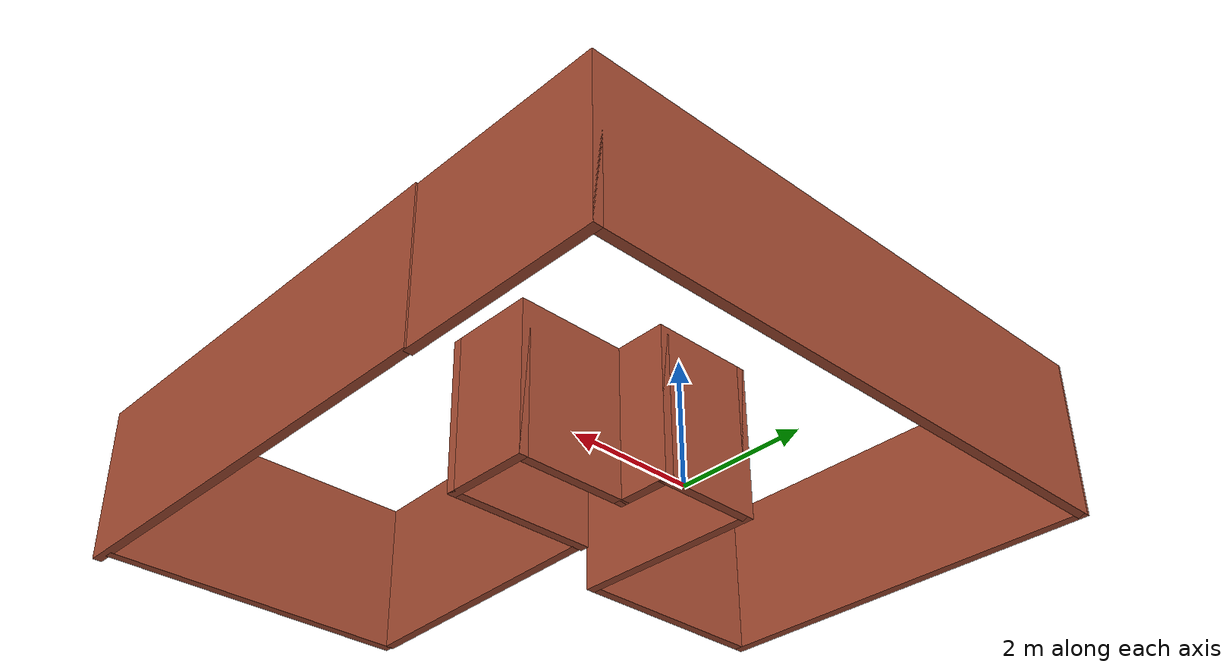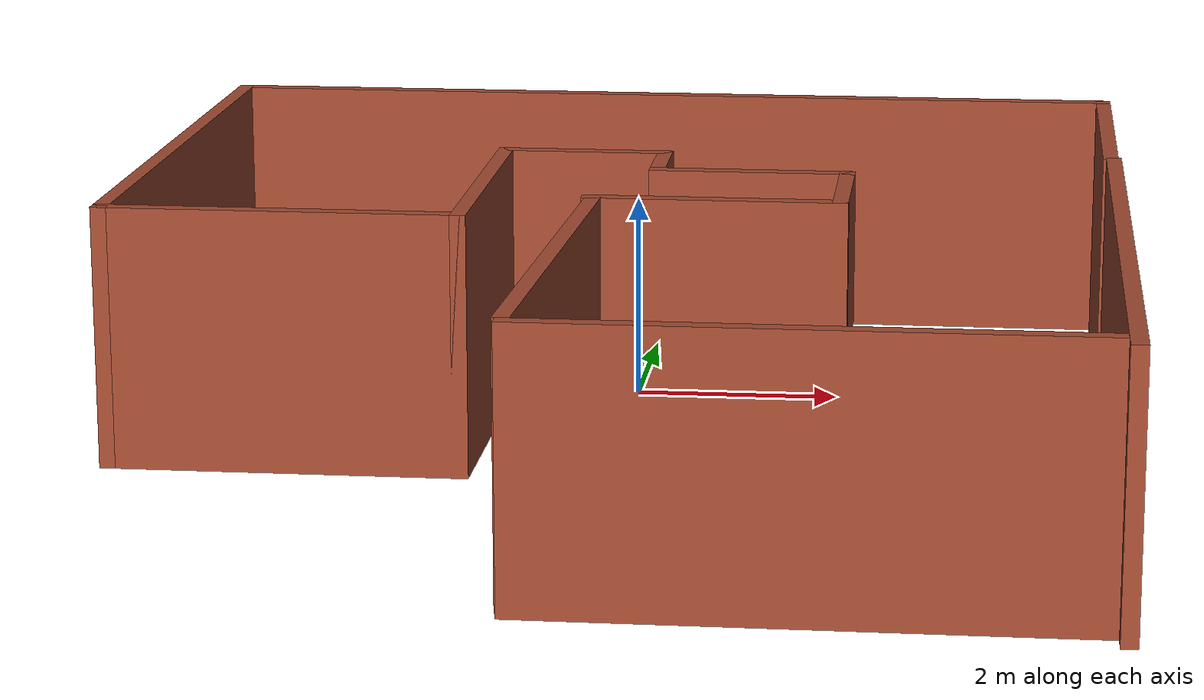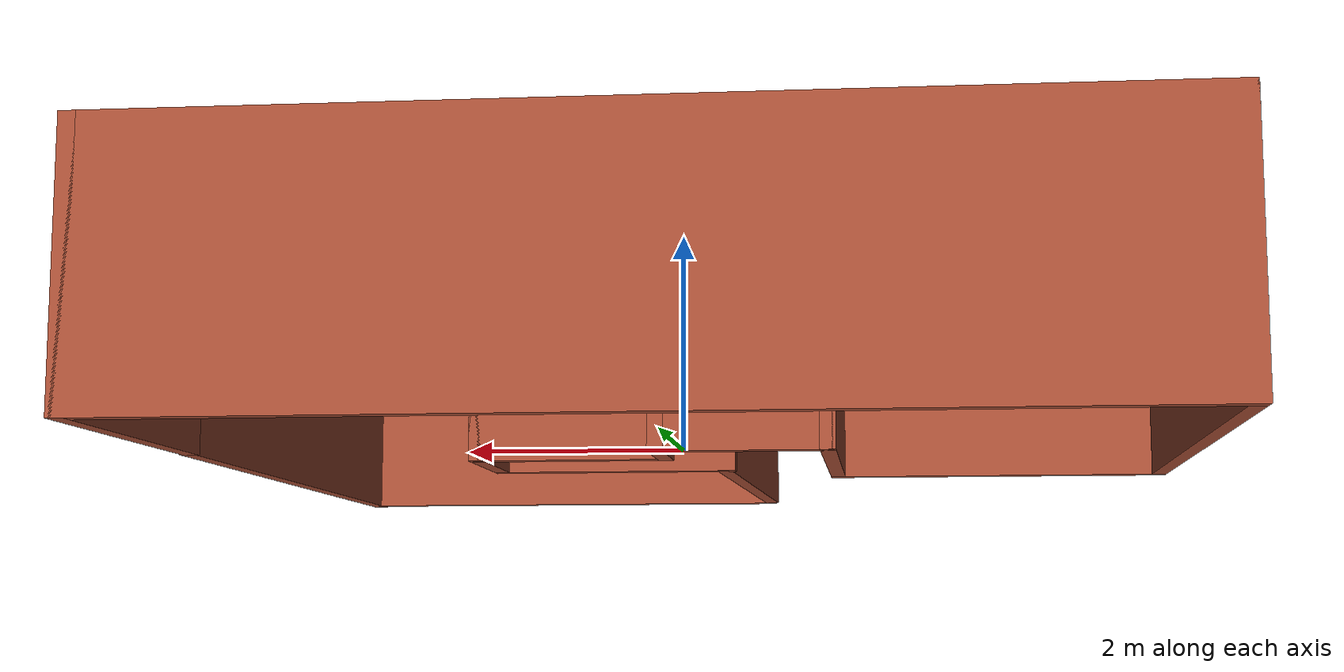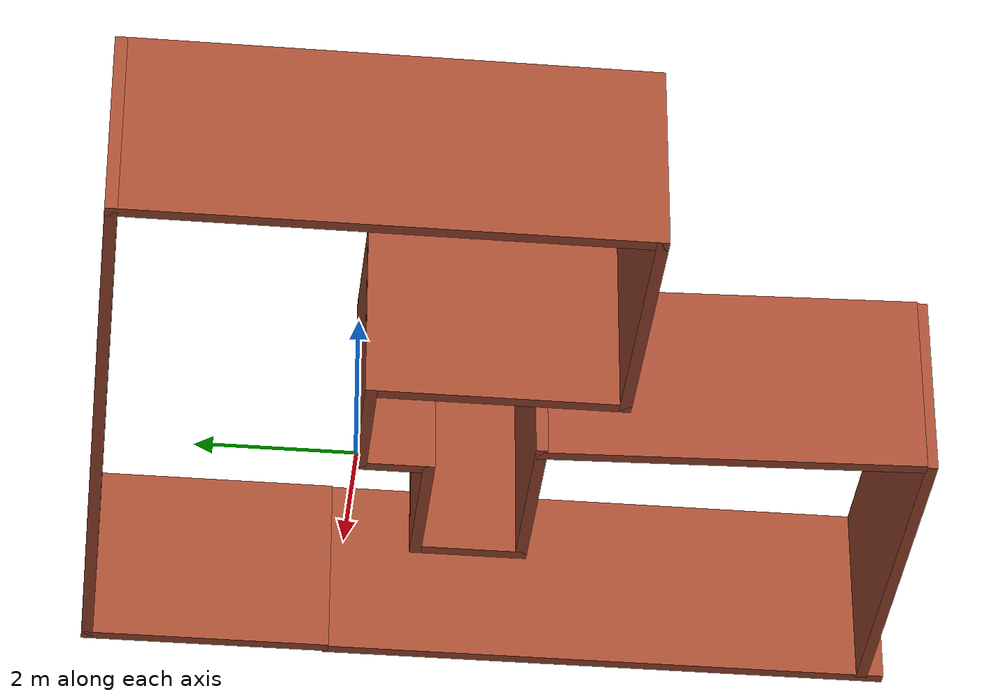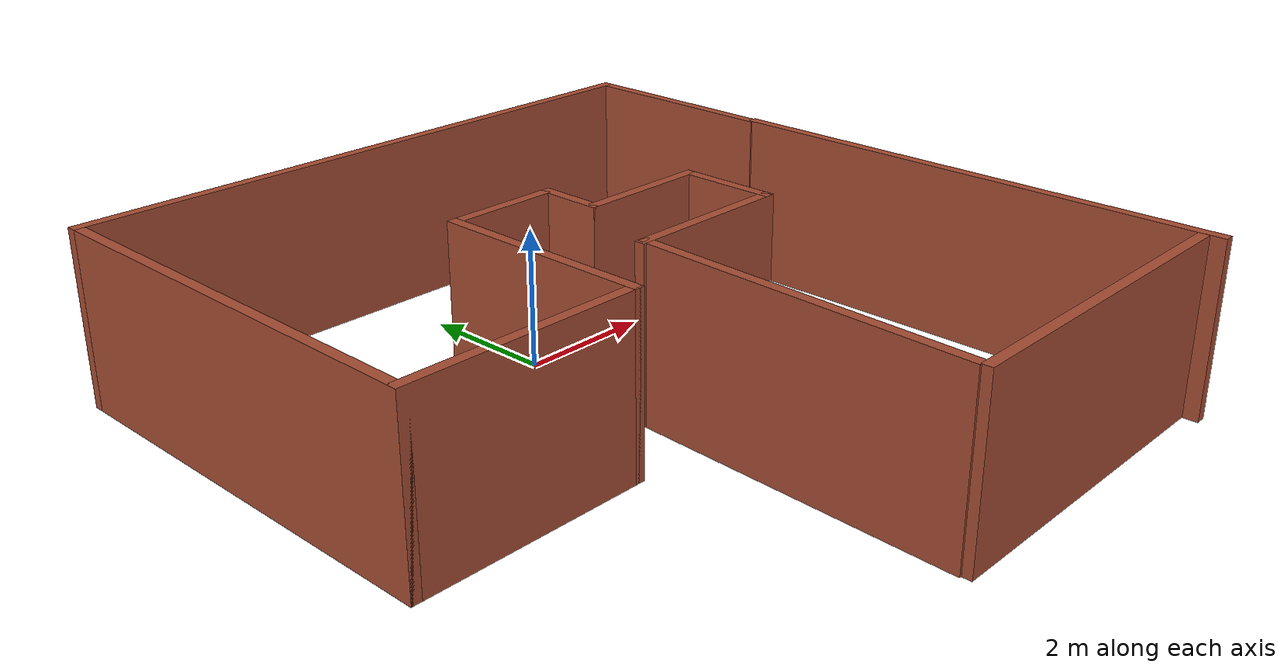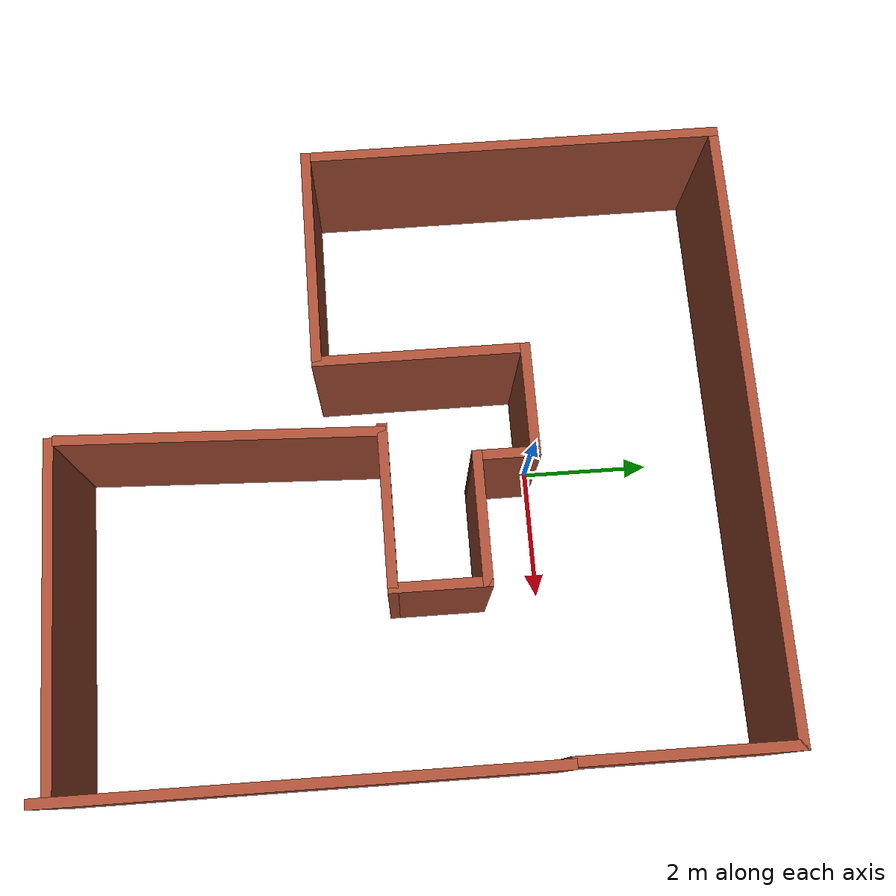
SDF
<?xml version='1.0'?>
<sdf version='1.6'>
  <model name='world'>
    <link name='Wall_0'>
      <pose frame=''>-4.675 0 0 0 0 -1.5708</pose>
      <self_collide>0</self_collide>
      <enable_wind>0</enable_wind>
      <kinematic>0</kinematic>
      <visual name='Wall_0_Visual'>
        <pose frame=''>0 0 1.25 0 -0 0</pose>
        <geometry>
          <box>
            <size>6.5 0.15 2.5</size>
          </box>
        </geometry>
        <material>
          <script>
            <uri>file://media/materials/scripts/gazebo.material</uri>
            <name>Gazebo/Bricks</name>
          </script>
          <ambient>1 1 1 1</ambient>
        </material>
        <meta>
          <layer>0</layer>
        </meta>
        <transparency>0</transparency>
        <cast_shadows>1</cast_shadows>
      </visual>
      <collision name='Wall_0_Collision'>
        <laser_retro>0</laser_retro>
        <max_contacts>10</max_contacts>
        <pose frame=''>0 0 1.25 0 -0 0</pose>
        <geometry>
          <box>
            <size>6.5 0.15 2.5</size>
          </box>
        </geometry>
        <surface>
          <friction>
            <ode>
              <mu>1</mu>
              <mu2>1</mu2>
              <fdir1>0 0 0</fdir1>
              <slip1>0</slip1>
              <slip2>0</slip2>
            </ode>
            <torsional>
              <coefficient>1</coefficient>
              <patch_radius>0</patch_radius>
              <surface_radius>0</surface_radius>
              <use_patch_radius>1</use_patch_radius>
              <ode>
                <slip>0</slip>
              </ode>
            </torsional>
          </friction>
          <bounce>
            <restitution_coefficient>0</restitution_coefficient>
            <threshold>1e+06</threshold>
          </bounce>
          <contact>
            <collide_without_contact>0</collide_without_contact>
            <collide_without_contact_bitmask>1</collide_without_contact_bitmask>
            <collide_bitmask>1</collide_bitmask>
            <ode>
              <soft_cfm>0</soft_cfm>
              <soft_erp>0.2</soft_erp>
              <kp>1e+13</kp>
              <kd>1</kd>
              <max_vel>0.01</max_vel>
              <min_depth>0</min_depth>
            </ode>
            <bullet>
              <split_impulse>1</split_impulse>
              <split_impulse_penetration_threshold>-0.01</split_impulse_penetration_threshold>
              <soft_cfm>0</soft_cfm>
              <soft_erp>0.2</soft_erp>
              <kp>1e+13</kp>
              <kd>1</kd>
            </bullet>
          </contact>
        </surface>
      </collision>
    </link>
    <link name='Wall_1'>
      <pose frame=''>-3 -3.175 0 0 -0 0</pose>
      <self_collide>0</self_collide>
      <enable_wind>0</enable_wind>
      <kinematic>0</kinematic>
      <visual name='Wall_1_Visual'>
        <pose frame=''>0 0 1.25 0 -0 0</pose>
        <geometry>
          <box>
            <size>3.5 0.15 2.5</size>
          </box>
        </geometry>
        <material>
          <script>
            <uri>file://media/materials/scripts/gazebo.material</uri>
            <name>Gazebo/Bricks</name>
          </script>
          <ambient>1 1 1 1</ambient>
        </material>
        <meta>
          <layer>0</layer>
        </meta>
        <transparency>0</transparency>
        <cast_shadows>1</cast_shadows>
      </visual>
      <collision name='Wall_1_Collision'>
        <laser_retro>0</laser_retro>
        <max_contacts>10</max_contacts>
        <pose frame=''>0 0 1.25 0 -0 0</pose>
        <geometry>
          <box>
            <size>3.5 0.15 2.5</size>
          </box>
        </geometry>
        <surface>
          <friction>
            <ode>
              <mu>1</mu>
              <mu2>1</mu2>
              <fdir1>0 0 0</fdir1>
              <slip1>0</slip1>
              <slip2>0</slip2>
            </ode>
            <torsional>
              <coefficient>1</coefficient>
              <patch_radius>0</patch_radius>
              <surface_radius>0</surface_radius>
              <use_patch_radius>1</use_patch_radius>
              <ode>
                <slip>0</slip>
              </ode>
            </torsional>
          </friction>
          <bounce>
            <restitution_coefficient>0</restitution_coefficient>
            <threshold>1e+06</threshold>
          </bounce>
          <contact>
            <collide_without_contact>0</collide_without_contact>
            <collide_without_contact_bitmask>1</collide_without_contact_bitmask>
            <collide_bitmask>1</collide_bitmask>
            <ode>
              <soft_cfm>0</soft_cfm>
              <soft_erp>0.2</soft_erp>
              <kp>1e+13</kp>
              <kd>1</kd>
              <max_vel>0.01</max_vel>
              <min_depth>0</min_depth>
            </ode>
            <bullet>
              <split_impulse>1</split_impulse>
              <split_impulse_penetration_threshold>-0.01</split_impulse_penetration_threshold>
              <soft_cfm>0</soft_cfm>
              <soft_erp>0.2</soft_erp>
              <kp>1e+13</kp>
              <kd>1</kd>
            </bullet>
          </contact>
        </surface>
      </collision>
    </link>
    <link name='Wall_11'>
      <pose frame=''>0 3.175 0 0 -0 0</pose>
      <self_collide>0</self_collide>
      <enable_wind>0</enable_wind>
      <kinematic>0</kinematic>
      <visual name='Wall_11_Visual'>
        <pose frame=''>0 0 1.25 0 -0 0</pose>
        <geometry>
          <box>
            <size>9.5 0.15 2.5</size>
          </box>
        </geometry>
        <material>
          <script>
            <uri>file://media/materials/scripts/gazebo.material</uri>
            <name>Gazebo/Bricks</name>
          </script>
          <ambient>1 1 1 1</ambient>
        </material>
        <meta>
          <layer>0</layer>
        </meta>
        <transparency>0</transparency>
        <cast_shadows>1</cast_shadows>
      </visual>
      <collision name='Wall_11_Collision'>
        <laser_retro>0</laser_retro>
        <max_contacts>10</max_contacts>
        <pose frame=''>0 0 1.25 0 -0 0</pose>
        <geometry>
          <box>
            <size>9.5 0.15 2.5</size>
          </box>
        </geometry>
        <surface>
          <friction>
            <ode>
              <mu>1</mu>
              <mu2>1</mu2>
              <fdir1>0 0 0</fdir1>
              <slip1>0</slip1>
              <slip2>0</slip2>
            </ode>
            <torsional>
              <coefficient>1</coefficient>
              <patch_radius>0</patch_radius>
              <surface_radius>0</surface_radius>
              <use_patch_radius>1</use_patch_radius>
              <ode>
                <slip>0</slip>
              </ode>
            </torsional>
          </friction>
          <bounce>
            <restitution_coefficient>0</restitution_coefficient>
            <threshold>1e+06</threshold>
          </bounce>
          <contact>
            <collide_without_contact>0</collide_without_contact>
            <collide_without_contact_bitmask>1</collide_without_contact_bitmask>
            <collide_bitmask>1</collide_bitmask>
            <ode>
              <soft_cfm>0</soft_cfm>
              <soft_erp>0.2</soft_erp>
              <kp>1e+13</kp>
              <kd>1</kd>
              <max_vel>0.01</max_vel>
              <min_depth>0</min_depth>
            </ode>
            <bullet>
              <split_impulse>1</split_impulse>
              <split_impulse_penetration_threshold>-0.01</split_impulse_penetration_threshold>
              <soft_cfm>0</soft_cfm>
              <soft_erp>0.2</soft_erp>
              <kp>1e+13</kp>
              <kd>1</kd>
            </bullet>
          </contact>
        </surface>
      </collision>
    </link>
    <link name='Wall_12'>
      <pose frame=''>4.675 1.625 0 0 0 -1.5708</pose>
      <self_collide>0</self_collide>
      <enable_wind>0</enable_wind>
      <kinematic>0</kinematic>
      <visual name='Wall_12_Visual'>
        <pose frame=''>0 0 1.25 0 -0 0</pose>
        <geometry>
          <box>
            <size>3.25 0.15 2.5</size>
          </box>
        </geometry>
        <material>
          <script>
            <uri>file://media/materials/scripts/gazebo.material</uri>
            <name>Gazebo/Bricks</name>
          </script>
          <ambient>1 1 1 1</ambient>
        </material>
        <meta>
          <layer>0</layer>
        </meta>
        <transparency>0</transparency>
        <cast_shadows>1</cast_shadows>
      </visual>
      <collision name='Wall_12_Collision'>
        <laser_retro>0</laser_retro>
        <max_contacts>10</max_contacts>
        <pose frame=''>0 0 1.25 0 -0 0</pose>
        <geometry>
          <box>
            <size>3.25 0.15 2.5</size>
          </box>
        </geometry>
        <surface>
          <friction>
            <ode>
              <mu>1</mu>
              <mu2>1</mu2>
              <fdir1>0 0 0</fdir1>
              <slip1>0</slip1>
              <slip2>0</slip2>
            </ode>
            <torsional>
              <coefficient>1</coefficient>
              <patch_radius>0</patch_radius>
              <surface_radius>0</surface_radius>
              <use_patch_radius>1</use_patch_radius>
              <ode>
                <slip>0</slip>
              </ode>
            </torsional>
          </friction>
          <bounce>
            <restitution_coefficient>0</restitution_coefficient>
            <threshold>1e+06</threshold>
          </bounce>
          <contact>
            <collide_without_contact>0</collide_without_contact>
            <collide_without_contact_bitmask>1</collide_without_contact_bitmask>
            <collide_bitmask>1</collide_bitmask>
            <ode>
              <soft_cfm>0</soft_cfm>
              <soft_erp>0.2</soft_erp>
              <kp>1e+13</kp>
              <kd>1</kd>
              <max_vel>0.01</max_vel>
              <min_depth>0</min_depth>
            </ode>
            <bullet>
              <split_impulse>1</split_impulse>
              <split_impulse_penetration_threshold>-0.01</split_impulse_penetration_threshold>
              <soft_cfm>0</soft_cfm>
              <soft_erp>0.2</soft_erp>
              <kp>1e+13</kp>
              <kd>1</kd>
            </bullet>
          </contact>
        </surface>
      </collision>
    </link>
    <link name='Wall_14'>
      <pose frame=''>4.70399 -3.67483 0.002247 0 0 -1.5708</pose>
      <self_collide>0</self_collide>
      <enable_wind>0</enable_wind>
      <kinematic>0</kinematic>
      <inertial>
        <inertia>
          <ixx>0</ixx>
          <ixy>0</ixy>
          <ixz>0</ixz>
          <iyy>0</iyy>
          <iyz>0</iyz>
          <izz>0</izz>
        </inertia>
        <mass>0</mass>
        <pose frame=''>0 0 0 0 -0 0</pose>
      </inertial>
      <visual name='Wall_14_Visual'>
        <pose frame=''>0 0 1.25 0 -0 0</pose>
        <geometry>
          <box>
            <size>7.48301 0.15 2.5</size>
          </box>
        </geometry>
        <material>
          <script>
            <uri>file://media/materials/scripts/gazebo.material</uri>
            <name>Gazebo/Bricks</name>
          </script>
          <ambient>1 1 1 1</ambient>
        </material>
        <meta>
          <layer>0</layer>
        </meta>
        <transparency>0</transparency>
        <cast_shadows>1</cast_shadows>
      </visual>
      <collision name='Wall_14_Collision'>
        <laser_retro>0</laser_retro>
        <max_contacts>10</max_contacts>
        <pose frame=''>0 0 1.25 0 -0 0</pose>
        <geometry>
          <box>
            <size>7.48301 0.15 2.5</size>
          </box>
        </geometry>
        <surface>
          <friction>
            <ode>
              <mu>1</mu>
              <mu2>1</mu2>
              <fdir1>0 0 0</fdir1>
              <slip1>0</slip1>
              <slip2>0</slip2>
            </ode>
            <torsional>
              <coefficient>1</coefficient>
              <patch_radius>0</patch_radius>
              <surface_radius>0</surface_radius>
              <use_patch_radius>1</use_patch_radius>
              <ode>
                <slip>0</slip>
              </ode>
            </torsional>
          </friction>
          <bounce>
            <restitution_coefficient>0</restitution_coefficient>
            <threshold>1e+06</threshold>
          </bounce>
          <contact>
            <collide_without_contact>0</collide_without_contact>
            <collide_without_contact_bitmask>1</collide_without_contact_bitmask>
            <collide_bitmask>1</collide_bitmask>
            <ode>
              <soft_cfm>0</soft_cfm>
              <soft_erp>0.2</soft_erp>
              <kp>1e+13</kp>
              <kd>1</kd>
              <max_vel>0.01</max_vel>
              <min_depth>0</min_depth>
            </ode>
            <bullet>
              <split_impulse>1</split_impulse>
              <split_impulse_penetration_threshold>-0.01</split_impulse_penetration_threshold>
              <soft_cfm>0</soft_cfm>
              <soft_erp>0.2</soft_erp>
              <kp>1e+13</kp>
              <kd>1</kd>
            </bullet>
          </contact>
        </surface>
      </collision>
    </link>
    <link name='Wall_16'>
      <pose frame=''>2.12875 -7.12658 0 0 -0 3.14159</pose>
      <self_collide>0</self_collide>
      <enable_wind>0</enable_wind>
      <kinematic>0</kinematic>
      <inertial>
        <inertia>
          <ixx>0</ixx>
          <ixy>0</ixy>
          <ixz>0</ixz>
          <iyy>0</iyy>
          <iyz>0</iyz>
          <izz>0</izz>
        </inertia>
        <mass>0</mass>
        <pose frame=''>0 0 0 0 -0 0</pose>
      </inertial>
      <visual name='Wall_16_Visual'>
        <pose frame=''>0 0 1.25 0 -0 0</pose>
        <geometry>
          <box>
            <size>5.10401 0.15 2.5</size>
          </box>
        </geometry>
        <material>
          <script>
            <uri>file://media/materials/scripts/gazebo.material</uri>
            <name>Gazebo/Bricks</name>
          </script>
          <ambient>1 1 1 1</ambient>
        </material>
        <meta>
          <layer>0</layer>
        </meta>
        <transparency>0</transparency>
        <cast_shadows>1</cast_shadows>
      </visual>
      <collision name='Wall_16_Collision'>
        <laser_retro>0</laser_retro>
        <max_contacts>10</max_contacts>
        <pose frame=''>0 0 1.25 0 -0 0</pose>
        <geometry>
          <box>
            <size>5.10401 0.15 2.5</size>
          </box>
        </geometry>
        <surface>
          <friction>
            <ode>
              <mu>1</mu>
              <mu2>1</mu2>
              <fdir1>0 0 0</fdir1>
              <slip1>0</slip1>
              <slip2>0</slip2>
            </ode>
            <torsional>
              <coefficient>1</coefficient>
              <patch_radius>0</patch_radius>
              <surface_radius>0</surface_radius>
              <use_patch_radius>1</use_patch_radius>
              <ode>
                <slip>0</slip>
              </ode>
            </torsional>
          </friction>
          <bounce>
            <restitution_coefficient>0</restitution_coefficient>
            <threshold>1e+06</threshold>
          </bounce>
          <contact>
            <collide_without_contact>0</collide_without_contact>
            <collide_without_contact_bitmask>1</collide_without_contact_bitmask>
            <collide_bitmask>1</collide_bitmask>
            <ode>
              <soft_cfm>0</soft_cfm>
              <soft_erp>0.2</soft_erp>
              <kp>1e+13</kp>
              <kd>1</kd>
              <max_vel>0.01</max_vel>
              <min_depth>0</min_depth>
            </ode>
            <bullet>
              <split_impulse>1</split_impulse>
              <split_impulse_penetration_threshold>-0.01</split_impulse_penetration_threshold>
              <soft_cfm>0</soft_cfm>
              <soft_erp>0.2</soft_erp>
              <kp>1e+13</kp>
              <kd>1</kd>
            </bullet>
          </contact>
        </surface>
      </collision>
    </link>
    <link name='Wall_18'>
      <pose frame=''>-0.281577 -4.64365 0 0 -0 1.53082</pose>
      <self_collide>0</self_collide>
      <enable_wind>0</enable_wind>
      <kinematic>0</kinematic>
      <inertial>
        <inertia>
          <ixx>0</ixx>
          <ixy>0</ixy>
          <ixz>0</ixz>
          <iyy>0</iyy>
          <iyz>0</iyz>
          <izz>0</izz>
        </inertia>
        <mass>0</mass>
        <pose frame=''>0 0 0 0 -0 0</pose>
      </inertial>
      <visual name='Wall_18_Visual'>
        <pose frame=''>0 0 1.25 0 -0 0</pose>
        <geometry>
          <box>
            <size>4.85133 0.15 2.5</size>
          </box>
        </geometry>
        <material>
          <script>
            <uri>file://media/materials/scripts/gazebo.material</uri>
            <name>Gazebo/Bricks</name>
          </script>
          <ambient>1 1 1 1</ambient>
        </material>
        <meta>
          <layer>0</layer>
        </meta>
        <transparency>0</transparency>
        <cast_shadows>1</cast_shadows>
      </visual>
      <collision name='Wall_18_Collision'>
        <laser_retro>0</laser_retro>
        <max_contacts>10</max_contacts>
        <pose frame=''>0 0 1.25 0 -0 0</pose>
        <geometry>
          <box>
            <size>4.85133 0.15 2.5</size>
          </box>
        </geometry>
        <surface>
          <friction>
            <ode>
              <mu>1</mu>
              <mu2>1</mu2>
              <fdir1>0 0 0</fdir1>
              <slip1>0</slip1>
              <slip2>0</slip2>
            </ode>
            <torsional>
              <coefficient>1</coefficient>
              <patch_radius>0</patch_radius>
              <surface_radius>0</surface_radius>
              <use_patch_radius>1</use_patch_radius>
              <ode>
                <slip>0</slip>
              </ode>
            </torsional>
          </friction>
          <bounce>
            <restitution_coefficient>0</restitution_coefficient>
            <threshold>1e+06</threshold>
          </bounce>
          <contact>
            <collide_without_contact>0</collide_without_contact>
            <collide_without_contact_bitmask>1</collide_without_contact_bitmask>
            <collide_bitmask>1</collide_bitmask>
            <ode>
              <soft_cfm>0</soft_cfm>
              <soft_erp>0.2</soft_erp>
              <kp>1e+13</kp>
              <kd>1</kd>
              <max_vel>0.01</max_vel>
              <min_depth>0</min_depth>
            </ode>
            <bullet>
              <split_impulse>1</split_impulse>
              <split_impulse_penetration_threshold>-0.01</split_impulse_penetration_threshold>
              <soft_cfm>0</soft_cfm>
              <soft_erp>0.2</soft_erp>
              <kp>1e+13</kp>
              <kd>1</kd>
            </bullet>
          </contact>
        </surface>
      </collision>
    </link>
    <link name='Wall_2'>
      <pose frame=''>-1.325 -1.625 0 0 -0 1.5708</pose>
      <self_collide>0</self_collide>
      <enable_wind>0</enable_wind>
      <kinematic>0</kinematic>
      <visual name='Wall_2_Visual'>
        <pose frame=''>0 0 1.25 0 -0 0</pose>
        <geometry>
          <box>
            <size>3.25 0.15 2.5</size>
          </box>
        </geometry>
        <material>
          <script>
            <uri>file://media/materials/scripts/gazebo.material</uri>
            <name>Gazebo/Bricks</name>
          </script>
          <ambient>1 1 1 1</ambient>
        </material>
        <meta>
          <layer>0</layer>
        </meta>
        <transparency>0</transparency>
        <cast_shadows>1</cast_shadows>
      </visual>
      <collision name='Wall_2_Collision'>
        <laser_retro>0</laser_retro>
        <max_contacts>10</max_contacts>
        <pose frame=''>0 0 1.25 0 -0 0</pose>
        <geometry>
          <box>
            <size>3.25 0.15 2.5</size>
          </box>
        </geometry>
        <surface>
          <friction>
            <ode>
              <mu>1</mu>
              <mu2>1</mu2>
              <fdir1>0 0 0</fdir1>
              <slip1>0</slip1>
              <slip2>0</slip2>
            </ode>
            <torsional>
              <coefficient>1</coefficient>
              <patch_radius>0</patch_radius>
              <surface_radius>0</surface_radius>
              <use_patch_radius>1</use_patch_radius>
              <ode>
                <slip>0</slip>
              </ode>
            </torsional>
          </friction>
          <bounce>
            <restitution_coefficient>0</restitution_coefficient>
            <threshold>1e+06</threshold>
          </bounce>
          <contact>
            <collide_without_contact>0</collide_without_contact>
            <collide_without_contact_bitmask>1</collide_without_contact_bitmask>
            <collide_bitmask>1</collide_bitmask>
            <ode>
              <soft_cfm>0</soft_cfm>
              <soft_erp>0.2</soft_erp>
              <kp>1e+13</kp>
              <kd>1</kd>
              <max_vel>0.01</max_vel>
              <min_depth>0</min_depth>
            </ode>
            <bullet>
              <split_impulse>1</split_impulse>
              <split_impulse_penetration_threshold>-0.01</split_impulse_penetration_threshold>
              <soft_cfm>0</soft_cfm>
              <soft_erp>0.2</soft_erp>
              <kp>1e+13</kp>
              <kd>1</kd>
            </bullet>
          </contact>
        </surface>
      </collision>
    </link>
    <link name='Wall_3'>
      <pose frame=''>-0.525 -0.075 0 0 -0 0</pose>
      <self_collide>0</self_collide>
      <enable_wind>0</enable_wind>
      <kinematic>0</kinematic>
      <visual name='Wall_3_Visual'>
        <pose frame=''>0 0 1.25 0 -0 0</pose>
        <geometry>
          <box>
            <size>1.75 0.15 2.5</size>
          </box>
        </geometry>
        <material>
          <script>
            <uri>file://media/materials/scripts/gazebo.material</uri>
            <name>Gazebo/Bricks</name>
          </script>
          <ambient>1 1 1 1</ambient>
        </material>
        <meta>
          <layer>0</layer>
        </meta>
        <transparency>0</transparency>
        <cast_shadows>1</cast_shadows>
      </visual>
      <collision name='Wall_3_Collision'>
        <laser_retro>0</laser_retro>
        <max_contacts>10</max_contacts>
        <pose frame=''>0 0 1.25 0 -0 0</pose>
        <geometry>
          <box>
            <size>1.75 0.15 2.5</size>
          </box>
        </geometry>
        <surface>
          <friction>
            <ode>
              <mu>1</mu>
              <mu2>1</mu2>
              <fdir1>0 0 0</fdir1>
              <slip1>0</slip1>
              <slip2>0</slip2>
            </ode>
            <torsional>
              <coefficient>1</coefficient>
              <patch_radius>0</patch_radius>
              <surface_radius>0</surface_radius>
              <use_patch_radius>1</use_patch_radius>
              <ode>
                <slip>0</slip>
              </ode>
            </torsional>
          </friction>
          <bounce>
            <restitution_coefficient>0</restitution_coefficient>
            <threshold>1e+06</threshold>
          </bounce>
          <contact>
            <collide_without_contact>0</collide_without_contact>
            <collide_without_contact_bitmask>1</collide_without_contact_bitmask>
            <collide_bitmask>1</collide_bitmask>
            <ode>
              <soft_cfm>0</soft_cfm>
              <soft_erp>0.2</soft_erp>
              <kp>1e+13</kp>
              <kd>1</kd>
              <max_vel>0.01</max_vel>
              <min_depth>0</min_depth>
            </ode>
            <bullet>
              <split_impulse>1</split_impulse>
              <split_impulse_penetration_threshold>-0.01</split_impulse_penetration_threshold>
              <soft_cfm>0</soft_cfm>
              <soft_erp>0.2</soft_erp>
              <kp>1e+13</kp>
              <kd>1</kd>
            </bullet>
          </contact>
        </surface>
      </collision>
    </link>
    <link name='Wall_4'>
      <pose frame=''>0.275 -0.5 0 0 0 -1.5708</pose>
      <self_collide>0</self_collide>
      <enable_wind>0</enable_wind>
      <kinematic>0</kinematic>
      <visual name='Wall_4_Visual'>
        <pose frame=''>0 0 1.25 0 -0 0</pose>
        <geometry>
          <box>
            <size>1 0.15 2.5</size>
          </box>
        </geometry>
        <material>
          <script>
            <uri>file://media/materials/scripts/gazebo.material</uri>
            <name>Gazebo/Bricks</name>
          </script>
          <ambient>1 1 1 1</ambient>
        </material>
        <meta>
          <layer>0</layer>
        </meta>
        <transparency>0</transparency>
        <cast_shadows>1</cast_shadows>
      </visual>
      <collision name='Wall_4_Collision'>
        <laser_retro>0</laser_retro>
        <max_contacts>10</max_contacts>
        <pose frame=''>0 0 1.25 0 -0 0</pose>
        <geometry>
          <box>
            <size>1 0.15 2.5</size>
          </box>
        </geometry>
        <surface>
          <friction>
            <ode>
              <mu>1</mu>
              <mu2>1</mu2>
              <fdir1>0 0 0</fdir1>
              <slip1>0</slip1>
              <slip2>0</slip2>
            </ode>
            <torsional>
              <coefficient>1</coefficient>
              <patch_radius>0</patch_radius>
              <surface_radius>0</surface_radius>
              <use_patch_radius>1</use_patch_radius>
              <ode>
                <slip>0</slip>
              </ode>
            </torsional>
          </friction>
          <bounce>
            <restitution_coefficient>0</restitution_coefficient>
            <threshold>1e+06</threshold>
          </bounce>
          <contact>
            <collide_without_contact>0</collide_without_contact>
            <collide_without_contact_bitmask>1</collide_without_contact_bitmask>
            <collide_bitmask>1</collide_bitmask>
            <ode>
              <soft_cfm>0</soft_cfm>
              <soft_erp>0.2</soft_erp>
              <kp>1e+13</kp>
              <kd>1</kd>
              <max_vel>0.01</max_vel>
              <min_depth>0</min_depth>
            </ode>
            <bullet>
              <split_impulse>1</split_impulse>
              <split_impulse_penetration_threshold>-0.01</split_impulse_penetration_threshold>
              <soft_cfm>0</soft_cfm>
              <soft_erp>0.2</soft_erp>
              <kp>1e+13</kp>
              <kd>1</kd>
            </bullet>
          </contact>
        </surface>
      </collision>
    </link>
    <link name='Wall_5'>
      <pose frame=''>1.2 -0.925 0 0 -0 0</pose>
      <self_collide>0</self_collide>
      <enable_wind>0</enable_wind>
      <kinematic>0</kinematic>
      <visual name='Wall_5_Visual'>
        <pose frame=''>0 0 1.25 0 -0 0</pose>
        <geometry>
          <box>
            <size>2 0.15 2.5</size>
          </box>
        </geometry>
        <material>
          <script>
            <uri>file://media/materials/scripts/gazebo.material</uri>
            <name>Gazebo/Bricks</name>
          </script>
          <ambient>1 1 1 1</ambient>
        </material>
        <meta>
          <layer>0</layer>
        </meta>
        <transparency>0</transparency>
        <cast_shadows>1</cast_shadows>
      </visual>
      <collision name='Wall_5_Collision'>
        <laser_retro>0</laser_retro>
        <max_contacts>10</max_contacts>
        <pose frame=''>0 0 1.25 0 -0 0</pose>
        <geometry>
          <box>
            <size>2 0.15 2.5</size>
          </box>
        </geometry>
        <surface>
          <friction>
            <ode>
              <mu>1</mu>
              <mu2>1</mu2>
              <fdir1>0 0 0</fdir1>
              <slip1>0</slip1>
              <slip2>0</slip2>
            </ode>
            <torsional>
              <coefficient>1</coefficient>
              <patch_radius>0</patch_radius>
              <surface_radius>0</surface_radius>
              <use_patch_radius>1</use_patch_radius>
              <ode>
                <slip>0</slip>
              </ode>
            </torsional>
          </friction>
          <bounce>
            <restitution_coefficient>0</restitution_coefficient>
            <threshold>1e+06</threshold>
          </bounce>
          <contact>
            <collide_without_contact>0</collide_without_contact>
            <collide_without_contact_bitmask>1</collide_without_contact_bitmask>
            <collide_bitmask>1</collide_bitmask>
            <ode>
              <soft_cfm>0</soft_cfm>
              <soft_erp>0.2</soft_erp>
              <kp>1e+13</kp>
              <kd>1</kd>
              <max_vel>0.01</max_vel>
              <min_depth>0</min_depth>
            </ode>
            <bullet>
              <split_impulse>1</split_impulse>
              <split_impulse_penetration_threshold>-0.01</split_impulse_penetration_threshold>
              <soft_cfm>0</soft_cfm>
              <soft_erp>0.2</soft_erp>
              <kp>1e+13</kp>
              <kd>1</kd>
            </bullet>
          </contact>
        </surface>
      </collision>
    </link>
    <link name='Wall_6'>
      <pose frame=''>2.125 -1.6 0 0 0 -1.5708</pose>
      <self_collide>0</self_collide>
      <enable_wind>0</enable_wind>
      <kinematic>0</kinematic>
      <visual name='Wall_6_Visual'>
        <pose frame=''>0 0 1.25 0 -0 0</pose>
        <geometry>
          <box>
            <size>1.5 0.15 2.5</size>
          </box>
        </geometry>
        <material>
          <script>
            <uri>file://media/materials/scripts/gazebo.material</uri>
            <name>Gazebo/Bricks</name>
          </script>
          <ambient>1 1 1 1</ambient>
        </material>
        <meta>
          <layer>0</layer>
        </meta>
        <transparency>0</transparency>
        <cast_shadows>1</cast_shadows>
      </visual>
      <collision name='Wall_6_Collision'>
        <laser_retro>0</laser_retro>
        <max_contacts>10</max_contacts>
        <pose frame=''>0 0 1.25 0 -0 0</pose>
        <geometry>
          <box>
            <size>1.5 0.15 2.5</size>
          </box>
        </geometry>
        <surface>
          <friction>
            <ode>
              <mu>1</mu>
              <mu2>1</mu2>
              <fdir1>0 0 0</fdir1>
              <slip1>0</slip1>
              <slip2>0</slip2>
            </ode>
            <torsional>
              <coefficient>1</coefficient>
              <patch_radius>0</patch_radius>
              <surface_radius>0</surface_radius>
              <use_patch_radius>1</use_patch_radius>
              <ode>
                <slip>0</slip>
              </ode>
            </torsional>
          </friction>
          <bounce>
            <restitution_coefficient>0</restitution_coefficient>
            <threshold>1e+06</threshold>
          </bounce>
          <contact>
            <collide_without_contact>0</collide_without_contact>
            <collide_without_contact_bitmask>1</collide_without_contact_bitmask>
            <collide_bitmask>1</collide_bitmask>
            <ode>
              <soft_cfm>0</soft_cfm>
              <soft_erp>0.2</soft_erp>
              <kp>1e+13</kp>
              <kd>1</kd>
              <max_vel>0.01</max_vel>
              <min_depth>0</min_depth>
            </ode>
            <bullet>
              <split_impulse>1</split_impulse>
              <split_impulse_penetration_threshold>-0.01</split_impulse_penetration_threshold>
              <soft_cfm>0</soft_cfm>
              <soft_erp>0.2</soft_erp>
              <kp>1e+13</kp>
              <kd>1</kd>
            </bullet>
          </contact>
        </surface>
      </collision>
    </link>
    <link name='Wall_7'>
      <pose frame=''>0.95 -2.275 0 0 -0 3.14159</pose>
      <self_collide>0</self_collide>
      <enable_wind>0</enable_wind>
      <kinematic>0</kinematic>
      <visual name='Wall_7_Visual'>
        <pose frame=''>0 0 1.25 0 -0 0</pose>
        <geometry>
          <box>
            <size>2.5 0.15 2.5</size>
          </box>
        </geometry>
        <material>
          <script>
            <uri>file://media/materials/scripts/gazebo.material</uri>
            <name>Gazebo/Bricks</name>
          </script>
          <ambient>1 1 1 1</ambient>
        </material>
        <meta>
          <layer>0</layer>
        </meta>
        <transparency>0</transparency>
        <cast_shadows>1</cast_shadows>
      </visual>
      <collision name='Wall_7_Collision'>
        <laser_retro>0</laser_retro>
        <max_contacts>10</max_contacts>
        <pose frame=''>0 0 1.25 0 -0 0</pose>
        <geometry>
          <box>
            <size>2.5 0.15 2.5</size>
          </box>
        </geometry>
        <surface>
          <friction>
            <ode>
              <mu>1</mu>
              <mu2>1</mu2>
              <fdir1>0 0 0</fdir1>
              <slip1>0</slip1>
              <slip2>0</slip2>
            </ode>
            <torsional>
              <coefficient>1</coefficient>
              <patch_radius>0</patch_radius>
              <surface_radius>0</surface_radius>
              <use_patch_radius>1</use_patch_radius>
              <ode>
                <slip>0</slip>
              </ode>
            </torsional>
          </friction>
          <bounce>
            <restitution_coefficient>0</restitution_coefficient>
            <threshold>1e+06</threshold>
          </bounce>
          <contact>
            <collide_without_contact>0</collide_without_contact>
            <collide_without_contact_bitmask>1</collide_without_contact_bitmask>
            <collide_bitmask>1</collide_bitmask>
            <ode>
              <soft_cfm>0</soft_cfm>
              <soft_erp>0.2</soft_erp>
              <kp>1e+13</kp>
              <kd>1</kd>
              <max_vel>0.01</max_vel>
              <min_depth>0</min_depth>
            </ode>
            <bullet>
              <split_impulse>1</split_impulse>
              <split_impulse_penetration_threshold>-0.01</split_impulse_penetration_threshold>
              <soft_cfm>0</soft_cfm>
              <soft_erp>0.2</soft_erp>
              <kp>1e+13</kp>
              <kd>1</kd>
            </bullet>
          </contact>
        </surface>
      </collision>
    </link>
    <static>1</static>
    <allow_auto_disable>1</allow_auto_disable>
  </model>
</sdf>
